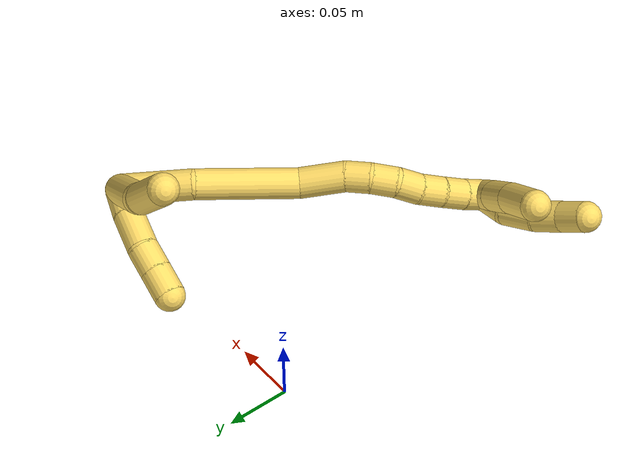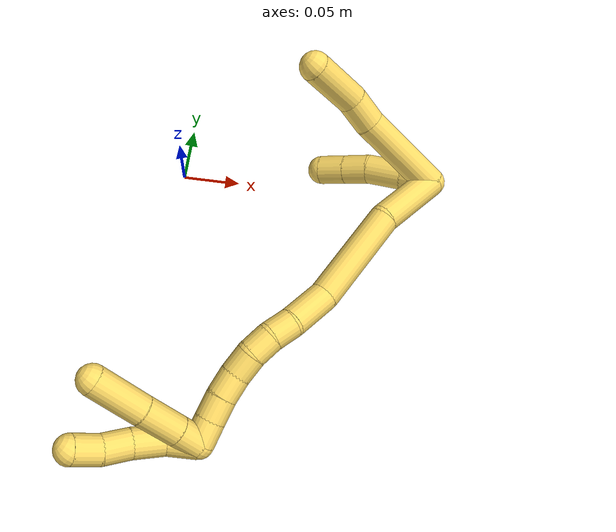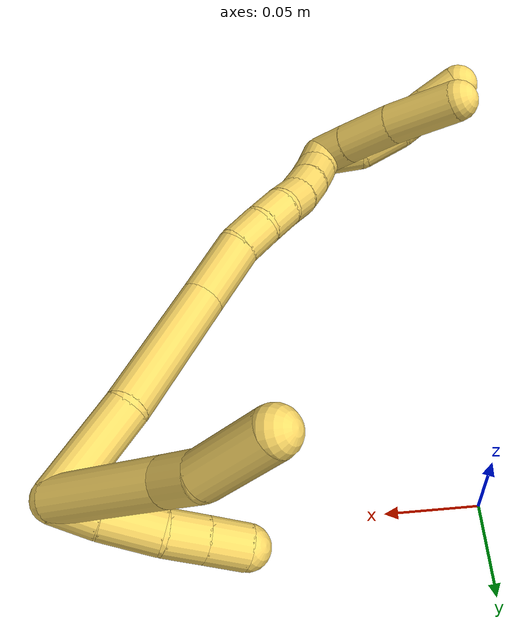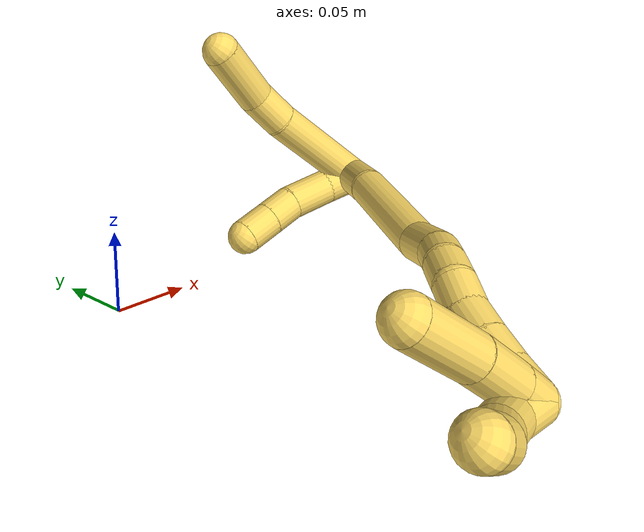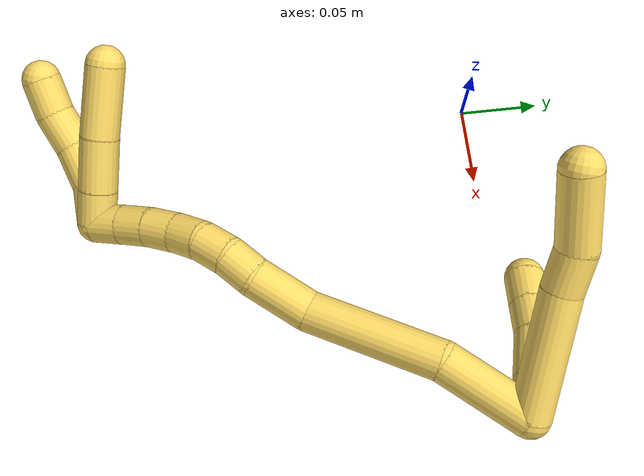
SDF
<sdf version="1.7">
 <world name="default">
  <model name="5">
   <static>0</static>
   <link name="5">
    <collision name="collision-cylinder-e_1_2_8">
     <pose>-0.000613 0.001011 -0.038886 -3.11559 -0.015749 1.08902</pose>
     <geometry><cylinder><radius>0.0125</radius><length>0.077808</length></cylinder></geometry>
     <surface>
      <friction><ode><mu>1.16</mu><mu2>1.16</mu2><slip1>0</slip1><slip2>0</slip2></ode></friction>
      <contact><ode><kp>1e+06</kp><kd>1</kd><max_vel>0</max_vel><min_depth>0.001</min_depth></ode></contact>
     </surface>
    </collision>
    <visual name="visual-cylinder-e_1_2_8">
     <pose>-0.000613 0.001011 -0.038886 -3.11559 -0.015749 1.08902</pose>
     <geometry><cylinder><radius>0.0125</radius><length>0.077808</length></cylinder></geometry>
     <material><ambient>1 0.858824 0.4 1</ambient></material>
    </visual>
    <collision name="collision-cylinder-e_2_8_9">
     <pose>-0.001825 0.004065 -0.090389 -2.98115 -0.046912 0.567868</pose>
     <geometry><cylinder><radius>0.0125</radius><length>0.02559</length></cylinder></geometry>
     <surface>
      <friction><ode><mu>1.16</mu><mu2>1.16</mu2><slip1>0</slip1><slip2>0</slip2></ode></friction>
      <contact><ode><kp>1e+06</kp><kd>1</kd><max_vel>0</max_vel><min_depth>0.001</min_depth></ode></contact>
     </surface>
    </collision>
    <visual name="visual-cylinder-e_2_8_9">
     <pose>-0.001825 0.004065 -0.090389 -2.98115 -0.046912 0.567868</pose>
     <geometry><cylinder><radius>0.0125</radius><length>0.02559</length></cylinder></geometry>
     <material><ambient>1 0.858824 0.4 1</ambient></material>
    </visual>
    <collision name="collision-cylinder-e_3_9_6">
     <pose>-0.009133 0.00614 -0.12532 -3.14011 -0.291999 3.13147</pose>
     <geometry><cylinder><radius>0.0125</radius><length>0.046602</length></cylinder></geometry>
     <surface>
      <friction><ode><mu>1.16</mu><mu2>1.16</mu2><slip1>0</slip1><slip2>0</slip2></ode></friction>
      <contact><ode><kp>1e+06</kp><kd>1</kd><max_vel>0</max_vel><min_depth>0.001</min_depth></ode></contact>
     </surface>
    </collision>
    <visual name="visual-cylinder-e_3_9_6">
     <pose>-0.009133 0.00614 -0.12532 -3.14011 -0.291999 3.13147</pose>
     <geometry><cylinder><radius>0.0125</radius><length>0.046602</length></cylinder></geometry>
     <material><ambient>1 0.858824 0.4 1</ambient></material>
    </visual>
    <collision name="collision-cylinder-e_1_2_10">
     <pose>0.007307 -0.006156 -0.007511 2.45505 0.645083 1.5037</pose>
     <geometry><cylinder><radius>0.0125</radius><length>0.024307</length></cylinder></geometry>
     <surface>
      <friction><ode><mu>1.16</mu><mu2>1.16</mu2><slip1>0</slip1><slip2>0</slip2></ode></friction>
      <contact><ode><kp>1e+06</kp><kd>1</kd><max_vel>0</max_vel><min_depth>0.001</min_depth></ode></contact>
     </surface>
    </collision>
    <visual name="visual-cylinder-e_1_2_10">
     <pose>0.007307 -0.006156 -0.007511 2.45505 0.645083 1.5037</pose>
     <geometry><cylinder><radius>0.0125</radius><length>0.024307</length></cylinder></geometry>
     <material><ambient>1 0.858824 0.4 1</ambient></material>
    </visual>
    <collision name="collision-cylinder-e_2_10_11">
     <pose>0.022949 -0.021107 -0.024994 2.41879 0.559893 1.30046</pose>
     <geometry><cylinder><radius>0.0125</radius><length>0.031386</length></cylinder></geometry>
     <surface>
      <friction><ode><mu>1.16</mu><mu2>1.16</mu2><slip1>0</slip1><slip2>0</slip2></ode></friction>
      <contact><ode><kp>1e+06</kp><kd>1</kd><max_vel>0</max_vel><min_depth>0.001</min_depth></ode></contact>
     </surface>
    </collision>
    <visual name="visual-cylinder-e_2_10_11">
     <pose>0.022949 -0.021107 -0.024994 2.41879 0.559893 1.30046</pose>
     <geometry><cylinder><radius>0.0125</radius><length>0.031386</length></cylinder></geometry>
     <material><ambient>1 0.858824 0.4 1</ambient></material>
    </visual>
    <collision name="collision-cylinder-e_3_11_12">
     <pose>0.03658 -0.037559 -0.040452 2.19249 0.51226 0.942896</pose>
     <geometry><cylinder><radius>0.0125</radius><length>0.021612</length></cylinder></geometry>
     <surface>
      <friction><ode><mu>1.16</mu><mu2>1.16</mu2><slip1>0</slip1><slip2>0</slip2></ode></friction>
      <contact><ode><kp>1e+06</kp><kd>1</kd><max_vel>0</max_vel><min_depth>0.001</min_depth></ode></contact>
     </surface>
    </collision>
    <visual name="visual-cylinder-e_3_11_12">
     <pose>0.03658 -0.037559 -0.040452 2.19249 0.51226 0.942896</pose>
     <geometry><cylinder><radius>0.0125</radius><length>0.021612</length></cylinder></geometry>
     <material><ambient>1 0.858824 0.4 1</ambient></material>
    </visual>
    <collision name="collision-cylinder-e_4_12_5">
     <pose>0.047478 -0.053222 -0.051707 2.19524 0.516247 0.952229</pose>
     <geometry><cylinder><radius>0.0125</radius><length>0.022695</length></cylinder></geometry>
     <surface>
      <friction><ode><mu>1.16</mu><mu2>1.16</mu2><slip1>0</slip1><slip2>0</slip2></ode></friction>
      <contact><ode><kp>1e+06</kp><kd>1</kd><max_vel>0</max_vel><min_depth>0.001</min_depth></ode></contact>
     </surface>
    </collision>
    <visual name="visual-cylinder-e_4_12_5">
     <pose>0.047478 -0.053222 -0.051707 2.19524 0.516247 0.952229</pose>
     <geometry><cylinder><radius>0.0125</radius><length>0.022695</length></cylinder></geometry>
     <material><ambient>1 0.858824 0.4 1</ambient></material>
    </visual>
    <collision name="collision-cylinder-e_1_2_13">
     <pose>-0.015724 -0.02212 -0.010486 2.01348 -0.570953 -0.868766</pose>
     <geometry><cylinder><radius>0.0125</radius><length>0.058189</length></cylinder></geometry>
     <surface>
      <friction><ode><mu>1.16</mu><mu2>1.16</mu2><slip1>0</slip1><slip2>0</slip2></ode></friction>
      <contact><ode><kp>1e+06</kp><kd>1</kd><max_vel>0</max_vel><min_depth>0.001</min_depth></ode></contact>
     </surface>
    </collision>
    <visual name="visual-cylinder-e_1_2_13">
     <pose>-0.015724 -0.02212 -0.010486 2.01348 -0.570953 -0.868766</pose>
     <geometry><cylinder><radius>0.0125</radius><length>0.058189</length></cylinder></geometry>
     <material><ambient>1 0.858824 0.4 1</ambient></material>
    </visual>
    <collision name="collision-cylinder-e_2_13_14">
     <pose>-0.052167 -0.080494 -0.024965 1.68048 -0.516611 -0.573547</pose>
     <geometry><cylinder><radius>0.0125</radius><length>0.083895</length></cylinder></geometry>
     <surface>
      <friction><ode><mu>1.16</mu><mu2>1.16</mu2><slip1>0</slip1><slip2>0</slip2></ode></friction>
      <contact><ode><kp>1e+06</kp><kd>1</kd><max_vel>0</max_vel><min_depth>0.001</min_depth></ode></contact>
     </surface>
    </collision>
    <visual name="visual-cylinder-e_2_13_14">
     <pose>-0.052167 -0.080494 -0.024965 1.68048 -0.516611 -0.573547</pose>
     <geometry><cylinder><radius>0.0125</radius><length>0.083895</length></cylinder></geometry>
     <material><ambient>1 0.858824 0.4 1</ambient></material>
    </visual>
    <collision name="collision-cylinder-e_3_14_15">
     <pose>-0.084118 -0.130149 -0.035951 2.05179 -0.639039 -0.999327</pose>
     <geometry><cylinder><radius>0.0125</radius><length>0.037666</length></cylinder></geometry>
     <surface>
      <friction><ode><mu>1.16</mu><mu2>1.16</mu2><slip1>0</slip1><slip2>0</slip2></ode></friction>
      <contact><ode><kp>1e+06</kp><kd>1</kd><max_vel>0</max_vel><min_depth>0.001</min_depth></ode></contact>
     </surface>
    </collision>
    <visual name="visual-cylinder-e_3_14_15">
     <pose>-0.084118 -0.130149 -0.035951 2.05179 -0.639039 -0.999327</pose>
     <geometry><cylinder><radius>0.0125</radius><length>0.037666</length></cylinder></geometry>
     <material><ambient>1 0.858824 0.4 1</ambient></material>
    </visual>
    <collision name="collision-cylinder-e_4_15_16">
     <pose>-0.099464 -0.151805 -0.046986 2.0261 -0.420873 -0.659789</pose>
     <geometry><cylinder><radius>0.0125</radius><length>0.020138</length></cylinder></geometry>
     <surface>
      <friction><ode><mu>1.16</mu><mu2>1.16</mu2><slip1>0</slip1><slip2>0</slip2></ode></friction>
      <contact><ode><kp>1e+06</kp><kd>1</kd><max_vel>0</max_vel><min_depth>0.001</min_depth></ode></contact>
     </surface>
    </collision>
    <visual name="visual-cylinder-e_4_15_16">
     <pose>-0.099464 -0.151805 -0.046986 2.0261 -0.420873 -0.659789</pose>
     <geometry><cylinder><radius>0.0125</radius><length>0.020138</length></cylinder></geometry>
     <material><ambient>1 0.858824 0.4 1</ambient></material>
    </visual>
    <collision name="collision-cylinder-e_5_16_17">
     <pose>-0.106979 -0.169299 -0.053055 1.7868 -0.345065 -0.426707</pose>
     <geometry><cylinder><radius>0.0125</radius><length>0.020106</length></cylinder></geometry>
     <surface>
      <friction><ode><mu>1.16</mu><mu2>1.16</mu2><slip1>0</slip1><slip2>0</slip2></ode></friction>
      <contact><ode><kp>1e+06</kp><kd>1</kd><max_vel>0</max_vel><min_depth>0.001</min_depth></ode></contact>
     </surface>
    </collision>
    <visual name="visual-cylinder-e_5_16_17">
     <pose>-0.106979 -0.169299 -0.053055 1.7868 -0.345065 -0.426707</pose>
     <geometry><cylinder><radius>0.0125</radius><length>0.020106</length></cylinder></geometry>
     <material><ambient>1 0.858824 0.4 1</ambient></material>
    </visual>
    <collision name="collision-cylinder-e_6_17_18">
     <pose>-0.112592 -0.188285 -0.054684 1.52991 -0.223073 -0.214204</pose>
     <geometry><cylinder><radius>0.0125</radius><length>0.020001</length></cylinder></geometry>
     <surface>
      <friction><ode><mu>1.16</mu><mu2>1.16</mu2><slip1>0</slip1><slip2>0</slip2></ode></friction>
      <contact><ode><kp>1e+06</kp><kd>1</kd><max_vel>0</max_vel><min_depth>0.001</min_depth></ode></contact>
     </surface>
    </collision>
    <visual name="visual-cylinder-e_6_17_18">
     <pose>-0.112592 -0.188285 -0.054684 1.52991 -0.223073 -0.214204</pose>
     <geometry><cylinder><radius>0.0125</radius><length>0.020001</length></cylinder></geometry>
     <material><ambient>1 0.858824 0.4 1</ambient></material>
    </visual>
    <collision name="collision-cylinder-e_7_18_19">
     <pose>-0.118391 -0.207329 -0.053448 1.48099 -0.36673 -0.335806</pose>
     <geometry><cylinder><radius>0.0125</radius><length>0.020005</length></cylinder></geometry>
     <surface>
      <friction><ode><mu>1.16</mu><mu2>1.16</mu2><slip1>0</slip1><slip2>0</slip2></ode></friction>
      <contact><ode><kp>1e+06</kp><kd>1</kd><max_vel>0</max_vel><min_depth>0.001</min_depth></ode></contact>
     </surface>
    </collision>
    <visual name="visual-cylinder-e_7_18_19">
     <pose>-0.118391 -0.207329 -0.053448 1.48099 -0.36673 -0.335806</pose>
     <geometry><cylinder><radius>0.0125</radius><length>0.020005</length></cylinder></geometry>
     <material><ambient>1 0.858824 0.4 1</ambient></material>
    </visual>
    <collision name="collision-cylinder-e_8_19_20">
     <pose>-0.125629 -0.22575 -0.050747 1.36919 -0.373796 -0.30631</pose>
     <geometry><cylinder><radius>0.0125</radius><length>0.02</length></cylinder></geometry>
     <surface>
      <friction><ode><mu>1.16</mu><mu2>1.16</mu2><slip1>0</slip1><slip2>0</slip2></ode></friction>
      <contact><ode><kp>1e+06</kp><kd>1</kd><max_vel>0</max_vel><min_depth>0.001</min_depth></ode></contact>
     </surface>
    </collision>
    <visual name="visual-cylinder-e_8_19_20">
     <pose>-0.125629 -0.22575 -0.050747 1.36919 -0.373796 -0.30631</pose>
     <geometry><cylinder><radius>0.0125</radius><length>0.02</length></cylinder></geometry>
     <material><ambient>1 0.858824 0.4 1</ambient></material>
    </visual>
    <collision name="collision-cylinder-e_9_20_1">
     <pose>-0.133507 -0.243749 -0.047064 1.36879 -0.436422 -0.35799</pose>
     <geometry><cylinder><radius>0.0125</radius><length>0.02</length></cylinder></geometry>
     <surface>
      <friction><ode><mu>1.16</mu><mu2>1.16</mu2><slip1>0</slip1><slip2>0</slip2></ode></friction>
      <contact><ode><kp>1e+06</kp><kd>1</kd><max_vel>0</max_vel><min_depth>0.001</min_depth></ode></contact>
     </surface>
    </collision>
    <visual name="visual-cylinder-e_9_20_1">
     <pose>-0.133507 -0.243749 -0.047064 1.36879 -0.436422 -0.35799</pose>
     <geometry><cylinder><radius>0.0125</radius><length>0.02</length></cylinder></geometry>
     <material><ambient>1 0.858824 0.4 1</ambient></material>
    </visual>
    <collision name="collision-cylinder-e_1_1_21">
     <pose>-0.136224 -0.259997 -0.055267 2.50753 0.120825 0.364615</pose>
     <geometry><cylinder><radius>0.0125</radius><length>0.025062</length></cylinder></geometry>
     <surface>
      <friction><ode><mu>1.16</mu><mu2>1.16</mu2><slip1>0</slip1><slip2>0</slip2></ode></friction>
      <contact><ode><kp>1e+06</kp><kd>1</kd><max_vel>0</max_vel><min_depth>0.001</min_depth></ode></contact>
     </surface>
    </collision>
    <visual name="visual-cylinder-e_1_1_21">
     <pose>-0.136224 -0.259997 -0.055267 2.50753 0.120825 0.364615</pose>
     <geometry><cylinder><radius>0.0125</radius><length>0.025062</length></cylinder></geometry>
     <material><ambient>1 0.858824 0.4 1</ambient></material>
    </visual>
    <collision name="collision-cylinder-e_2_21_22">
     <pose>-0.137672 -0.275447 -0.076084 2.49901 -0.215945 -0.629698</pose>
     <geometry><cylinder><radius>0.0125</radius><length>0.02761</length></cylinder></geometry>
     <surface>
      <friction><ode><mu>1.16</mu><mu2>1.16</mu2><slip1>0</slip1><slip2>0</slip2></ode></friction>
      <contact><ode><kp>1e+06</kp><kd>1</kd><max_vel>0</max_vel><min_depth>0.001</min_depth></ode></contact>
     </surface>
    </collision>
    <visual name="visual-cylinder-e_2_21_22">
     <pose>-0.137672 -0.275447 -0.076084 2.49901 -0.215945 -0.629698</pose>
     <geometry><cylinder><radius>0.0125</radius><length>0.02761</length></cylinder></geometry>
     <material><ambient>1 0.858824 0.4 1</ambient></material>
    </visual>
    <collision name="collision-cylinder-e_3_22_23">
     <pose>-0.145224 -0.290086 -0.095902 2.5131 -0.390667 -1.09368</pose>
     <geometry><cylinder><radius>0.0125</radius><length>0.024129</length></cylinder></geometry>
     <surface>
      <friction><ode><mu>1.16</mu><mu2>1.16</mu2><slip1>0</slip1><slip2>0</slip2></ode></friction>
      <contact><ode><kp>1e+06</kp><kd>1</kd><max_vel>0</max_vel><min_depth>0.001</min_depth></ode></contact>
     </surface>
    </collision>
    <visual name="visual-cylinder-e_3_22_23">
     <pose>-0.145224 -0.290086 -0.095902 2.5131 -0.390667 -1.09368</pose>
     <geometry><cylinder><radius>0.0125</radius><length>0.024129</length></cylinder></geometry>
     <material><ambient>1 0.858824 0.4 1</ambient></material>
    </visual>
    <collision name="collision-cylinder-e_4_23_4">
     <pose>-0.153476 -0.30091 -0.115075 2.74372 -0.3208 -1.35256</pose>
     <geometry><cylinder><radius>0.0125</radius><length>0.0232</length></cylinder></geometry>
     <surface>
      <friction><ode><mu>1.16</mu><mu2>1.16</mu2><slip1>0</slip1><slip2>0</slip2></ode></friction>
      <contact><ode><kp>1e+06</kp><kd>1</kd><max_vel>0</max_vel><min_depth>0.001</min_depth></ode></contact>
     </surface>
    </collision>
    <visual name="visual-cylinder-e_4_23_4">
     <pose>-0.153476 -0.30091 -0.115075 2.74372 -0.3208 -1.35256</pose>
     <geometry><cylinder><radius>0.0125</radius><length>0.0232</length></cylinder></geometry>
     <material><ambient>1 0.858824 0.4 1</ambient></material>
    </visual>
    <collision name="collision-cylinder-e_1_1_24">
     <pose>-0.138746 -0.25266 -0.056116 3.13862 -0.092759 -3.07766</pose>
     <geometry><cylinder><radius>0.0125</radius><length>0.021834</length></cylinder></geometry>
     <surface>
      <friction><ode><mu>1.16</mu><mu2>1.16</mu2><slip1>0</slip1><slip2>0</slip2></ode></friction>
      <contact><ode><kp>1e+06</kp><kd>1</kd><max_vel>0</max_vel><min_depth>0.001</min_depth></ode></contact>
     </surface>
    </collision>
    <visual name="visual-cylinder-e_1_1_24">
     <pose>-0.138746 -0.25266 -0.056116 3.13862 -0.092759 -3.07766</pose>
     <geometry><cylinder><radius>0.0125</radius><length>0.021834</length></cylinder></geometry>
     <material><ambient>1 0.858824 0.4 1</ambient></material>
    </visual>
    <collision name="collision-cylinder-e_2_24_25">
     <pose>-0.141042 -0.253103 -0.083727 3.11706 -0.076598 -2.52191</pose>
     <geometry><cylinder><radius>0.0125</radius><length>0.033591</length></cylinder></geometry>
     <surface>
      <friction><ode><mu>1.16</mu><mu2>1.16</mu2><slip1>0</slip1><slip2>0</slip2></ode></friction>
      <contact><ode><kp>1e+06</kp><kd>1</kd><max_vel>0</max_vel><min_depth>0.001</min_depth></ode></contact>
     </surface>
    </collision>
    <visual name="visual-cylinder-e_2_24_25">
     <pose>-0.141042 -0.253103 -0.083727 3.11706 -0.076598 -2.52191</pose>
     <geometry><cylinder><radius>0.0125</radius><length>0.033591</length></cylinder></geometry>
     <material><ambient>1 0.858824 0.4 1</ambient></material>
    </visual>
    <collision name="collision-cylinder-e_3_25_3">
     <pose>-0.142602 -0.254402 -0.122736 3.10174 -0.012324 -0.59979</pose>
     <geometry><cylinder><radius>0.0125</radius><length>0.044575</length></cylinder></geometry>
     <surface>
      <friction><ode><mu>1.16</mu><mu2>1.16</mu2><slip1>0</slip1><slip2>0</slip2></ode></friction>
      <contact><ode><kp>1e+06</kp><kd>1</kd><max_vel>0</max_vel><min_depth>0.001</min_depth></ode></contact>
     </surface>
    </collision>
    <visual name="visual-cylinder-e_3_25_3">
     <pose>-0.142602 -0.254402 -0.122736 3.10174 -0.012324 -0.59979</pose>
     <geometry><cylinder><radius>0.0125</radius><length>0.044575</length></cylinder></geometry>
     <material><ambient>1 0.858824 0.4 1</ambient></material>
    </visual>
    <collision name="collision-sphere-3">
     <pose>-0.142877 -0.25529 -0.145005 0 -0 0</pose>
     <geometry><sphere><radius>0.0125</radius></sphere></geometry>
     <surface>
      <friction><ode><mu>1.16</mu><mu2>1.16</mu2><slip1>0</slip1><slip2>0</slip2></ode></friction>
      <contact><ode><kp>1e+06</kp><kd>1</kd><max_vel>0</max_vel><min_depth>0.001</min_depth></ode></contact>
     </surface>
    </collision>
    <visual name="visual-sphere-3">
     <pose>-0.142877 -0.25529 -0.145005 0 -0 0</pose>
     <geometry><sphere><radius>0.0125</radius></sphere></geometry>
     <material><ambient>1 0.858824 0.4 1</ambient></material>
    </visual>
    <collision name="collision-sphere-25">
     <pose>-0.142327 -0.253514 -0.100468 0 -0 0</pose>
     <geometry><sphere><radius>0.0125</radius></sphere></geometry>
     <surface>
      <friction><ode><mu>1.16</mu><mu2>1.16</mu2><slip1>0</slip1><slip2>0</slip2></ode></friction>
      <contact><ode><kp>1e+06</kp><kd>1</kd><max_vel>0</max_vel><min_depth>0.001</min_depth></ode></contact>
     </surface>
    </collision>
    <visual name="visual-sphere-25">
     <pose>-0.142327 -0.253514 -0.100468 0 -0 0</pose>
     <geometry><sphere><radius>0.0125</radius></sphere></geometry>
     <material><ambient>1 0.858824 0.4 1</ambient></material>
    </visual>
    <collision name="collision-sphere-24">
     <pose>-0.139757 -0.252692 -0.066986 0 -0 0</pose>
     <geometry><sphere><radius>0.0125</radius></sphere></geometry>
     <surface>
      <friction><ode><mu>1.16</mu><mu2>1.16</mu2><slip1>0</slip1><slip2>0</slip2></ode></friction>
      <contact><ode><kp>1e+06</kp><kd>1</kd><max_vel>0</max_vel><min_depth>0.001</min_depth></ode></contact>
     </surface>
    </collision>
    <visual name="visual-sphere-24">
     <pose>-0.139757 -0.252692 -0.066986 0 -0 0</pose>
     <geometry><sphere><radius>0.0125</radius></sphere></geometry>
     <material><ambient>1 0.858824 0.4 1</ambient></material>
    </visual>
    <collision name="collision-sphere-4">
     <pose>-0.157134 -0.305175 -0.125223 0 -0 0</pose>
     <geometry><sphere><radius>0.0125</radius></sphere></geometry>
     <surface>
      <friction><ode><mu>1.16</mu><mu2>1.16</mu2><slip1>0</slip1><slip2>0</slip2></ode></friction>
      <contact><ode><kp>1e+06</kp><kd>1</kd><max_vel>0</max_vel><min_depth>0.001</min_depth></ode></contact>
     </surface>
    </collision>
    <visual name="visual-sphere-4">
     <pose>-0.157134 -0.305175 -0.125223 0 -0 0</pose>
     <geometry><sphere><radius>0.0125</radius></sphere></geometry>
     <material><ambient>1 0.858824 0.4 1</ambient></material>
    </visual>
    <collision name="collision-sphere-23">
     <pose>-0.149818 -0.296645 -0.104926 0 -0 0</pose>
     <geometry><sphere><radius>0.0125</radius></sphere></geometry>
     <surface>
      <friction><ode><mu>1.16</mu><mu2>1.16</mu2><slip1>0</slip1><slip2>0</slip2></ode></friction>
      <contact><ode><kp>1e+06</kp><kd>1</kd><max_vel>0</max_vel><min_depth>0.001</min_depth></ode></contact>
     </surface>
    </collision>
    <visual name="visual-sphere-23">
     <pose>-0.149818 -0.296645 -0.104926 0 -0 0</pose>
     <geometry><sphere><radius>0.0125</radius></sphere></geometry>
     <material><ambient>1 0.858824 0.4 1</ambient></material>
    </visual>
    <collision name="collision-sphere-22">
     <pose>-0.14063 -0.283528 -0.086879 0 -0 0</pose>
     <geometry><sphere><radius>0.0125</radius></sphere></geometry>
     <surface>
      <friction><ode><mu>1.16</mu><mu2>1.16</mu2><slip1>0</slip1><slip2>0</slip2></ode></friction>
      <contact><ode><kp>1e+06</kp><kd>1</kd><max_vel>0</max_vel><min_depth>0.001</min_depth></ode></contact>
     </surface>
    </collision>
    <visual name="visual-sphere-22">
     <pose>-0.14063 -0.283528 -0.086879 0 -0 0</pose>
     <geometry><sphere><radius>0.0125</radius></sphere></geometry>
     <material><ambient>1 0.858824 0.4 1</ambient></material>
    </visual>
    <collision name="collision-sphere-21">
     <pose>-0.134714 -0.267367 -0.065289 0 -0 0</pose>
     <geometry><sphere><radius>0.0125</radius></sphere></geometry>
     <surface>
      <friction><ode><mu>1.16</mu><mu2>1.16</mu2><slip1>0</slip1><slip2>0</slip2></ode></friction>
      <contact><ode><kp>1e+06</kp><kd>1</kd><max_vel>0</max_vel><min_depth>0.001</min_depth></ode></contact>
     </surface>
    </collision>
    <visual name="visual-sphere-21">
     <pose>-0.134714 -0.267367 -0.065289 0 -0 0</pose>
     <geometry><sphere><radius>0.0125</radius></sphere></geometry>
     <material><ambient>1 0.858824 0.4 1</ambient></material>
    </visual>
    <collision name="collision-sphere-1">
     <pose>-0.137734 -0.252628 -0.045246 0 -0 0</pose>
     <geometry><sphere><radius>0.0125</radius></sphere></geometry>
     <surface>
      <friction><ode><mu>1.16</mu><mu2>1.16</mu2><slip1>0</slip1><slip2>0</slip2></ode></friction>
      <contact><ode><kp>1e+06</kp><kd>1</kd><max_vel>0</max_vel><min_depth>0.001</min_depth></ode></contact>
     </surface>
    </collision>
    <visual name="visual-sphere-1">
     <pose>-0.137734 -0.252628 -0.045246 0 -0 0</pose>
     <geometry><sphere><radius>0.0125</radius></sphere></geometry>
     <material><ambient>1 0.858824 0.4 1</ambient></material>
    </visual>
    <collision name="collision-sphere-11">
     <pose>0.031284 -0.029902 -0.034966 0 -0 0</pose>
     <geometry><sphere><radius>0.0125</radius></sphere></geometry>
     <surface>
      <friction><ode><mu>1.16</mu><mu2>1.16</mu2><slip1>0</slip1><slip2>0</slip2></ode></friction>
      <contact><ode><kp>1e+06</kp><kd>1</kd><max_vel>0</max_vel><min_depth>0.001</min_depth></ode></contact>
     </surface>
    </collision>
    <visual name="visual-sphere-11">
     <pose>0.031284 -0.029902 -0.034966 0 -0 0</pose>
     <geometry><sphere><radius>0.0125</radius></sphere></geometry>
     <material><ambient>1 0.858824 0.4 1</ambient></material>
    </visual>
    <collision name="collision-sphere-10">
     <pose>0.014615 -0.012311 -0.015022 0 -0 0</pose>
     <geometry><sphere><radius>0.0125</radius></sphere></geometry>
     <surface>
      <friction><ode><mu>1.16</mu><mu2>1.16</mu2><slip1>0</slip1><slip2>0</slip2></ode></friction>
      <contact><ode><kp>1e+06</kp><kd>1</kd><max_vel>0</max_vel><min_depth>0.001</min_depth></ode></contact>
     </surface>
    </collision>
    <visual name="visual-sphere-10">
     <pose>0.014615 -0.012311 -0.015022 0 -0 0</pose>
     <geometry><sphere><radius>0.0125</radius></sphere></geometry>
     <material><ambient>1 0.858824 0.4 1</ambient></material>
    </visual>
    <collision name="collision-sphere-6">
     <pose>-0.015841 0.006173 -0.147635 0 -0 0</pose>
     <geometry><sphere><radius>0.0125</radius></sphere></geometry>
     <surface>
      <friction><ode><mu>1.16</mu><mu2>1.16</mu2><slip1>0</slip1><slip2>0</slip2></ode></friction>
      <contact><ode><kp>1e+06</kp><kd>1</kd><max_vel>0</max_vel><min_depth>0.001</min_depth></ode></contact>
     </surface>
    </collision>
    <visual name="visual-sphere-6">
     <pose>-0.015841 0.006173 -0.147635 0 -0 0</pose>
     <geometry><sphere><radius>0.0125</radius></sphere></geometry>
     <material><ambient>1 0.858824 0.4 1</ambient></material>
    </visual>
    <collision name="collision-sphere-9">
     <pose>-0.002425 0.006107 -0.103006 0 -0 0</pose>
     <geometry><sphere><radius>0.0125</radius></sphere></geometry>
     <surface>
      <friction><ode><mu>1.16</mu><mu2>1.16</mu2><slip1>0</slip1><slip2>0</slip2></ode></friction>
      <contact><ode><kp>1e+06</kp><kd>1</kd><max_vel>0</max_vel><min_depth>0.001</min_depth></ode></contact>
     </surface>
    </collision>
    <visual name="visual-sphere-9">
     <pose>-0.002425 0.006107 -0.103006 0 -0 0</pose>
     <geometry><sphere><radius>0.0125</radius></sphere></geometry>
     <material><ambient>1 0.858824 0.4 1</ambient></material>
    </visual>
    <collision name="collision-sphere-2">
     <geometry><sphere><radius>0.0125</radius></sphere></geometry>
     <surface>
      <friction><ode><mu>1.16</mu><mu2>1.16</mu2><slip1>0</slip1><slip2>0</slip2></ode></friction>
      <contact><ode><kp>1e+06</kp><kd>1</kd><max_vel>0</max_vel><min_depth>0.001</min_depth></ode></contact>
     </surface>
    </collision>
    <visual name="visual-sphere-2">
     <geometry><sphere><radius>0.0125</radius></sphere></geometry>
     <material><ambient>1 0.858824 0.4 1</ambient></material>
    </visual>
    <collision name="collision-sphere-19">
     <pose>-0.121977 -0.216629 -0.052611 0 -0 0</pose>
     <geometry><sphere><radius>0.0125</radius></sphere></geometry>
     <surface>
      <friction><ode><mu>1.16</mu><mu2>1.16</mu2><slip1>0</slip1><slip2>0</slip2></ode></friction>
      <contact><ode><kp>1e+06</kp><kd>1</kd><max_vel>0</max_vel><min_depth>0.001</min_depth></ode></contact>
     </surface>
    </collision>
    <visual name="visual-sphere-19">
     <pose>-0.121977 -0.216629 -0.052611 0 -0 0</pose>
     <geometry><sphere><radius>0.0125</radius></sphere></geometry>
     <material><ambient>1 0.858824 0.4 1</ambient></material>
    </visual>
    <collision name="collision-sphere-8">
     <pose>-0.001225 0.002023 -0.077772 0 -0 0</pose>
     <geometry><sphere><radius>0.0125</radius></sphere></geometry>
     <surface>
      <friction><ode><mu>1.16</mu><mu2>1.16</mu2><slip1>0</slip1><slip2>0</slip2></ode></friction>
      <contact><ode><kp>1e+06</kp><kd>1</kd><max_vel>0</max_vel><min_depth>0.001</min_depth></ode></contact>
     </surface>
    </collision>
    <visual name="visual-sphere-8">
     <pose>-0.001225 0.002023 -0.077772 0 -0 0</pose>
     <geometry><sphere><radius>0.0125</radius></sphere></geometry>
     <material><ambient>1 0.858824 0.4 1</ambient></material>
    </visual>
    <collision name="collision-sphere-12">
     <pose>0.041877 -0.045216 -0.045937 0 -0 0</pose>
     <geometry><sphere><radius>0.0125</radius></sphere></geometry>
     <surface>
      <friction><ode><mu>1.16</mu><mu2>1.16</mu2><slip1>0</slip1><slip2>0</slip2></ode></friction>
      <contact><ode><kp>1e+06</kp><kd>1</kd><max_vel>0</max_vel><min_depth>0.001</min_depth></ode></contact>
     </surface>
    </collision>
    <visual name="visual-sphere-12">
     <pose>0.041877 -0.045216 -0.045937 0 -0 0</pose>
     <geometry><sphere><radius>0.0125</radius></sphere></geometry>
     <material><ambient>1 0.858824 0.4 1</ambient></material>
    </visual>
    <collision name="collision-sphere-5">
     <pose>0.05308 -0.061229 -0.057477 0 -0 0</pose>
     <geometry><sphere><radius>0.0125</radius></sphere></geometry>
     <surface>
      <friction><ode><mu>1.16</mu><mu2>1.16</mu2><slip1>0</slip1><slip2>0</slip2></ode></friction>
      <contact><ode><kp>1e+06</kp><kd>1</kd><max_vel>0</max_vel><min_depth>0.001</min_depth></ode></contact>
     </surface>
    </collision>
    <visual name="visual-sphere-5">
     <pose>0.05308 -0.061229 -0.057477 0 -0 0</pose>
     <geometry><sphere><radius>0.0125</radius></sphere></geometry>
     <material><ambient>1 0.858824 0.4 1</ambient></material>
    </visual>
    <collision name="collision-sphere-13">
     <pose>-0.031447 -0.04424 -0.020972 0 -0 0</pose>
     <geometry><sphere><radius>0.0125</radius></sphere></geometry>
     <surface>
      <friction><ode><mu>1.16</mu><mu2>1.16</mu2><slip1>0</slip1><slip2>0</slip2></ode></friction>
      <contact><ode><kp>1e+06</kp><kd>1</kd><max_vel>0</max_vel><min_depth>0.001</min_depth></ode></contact>
     </surface>
    </collision>
    <visual name="visual-sphere-13">
     <pose>-0.031447 -0.04424 -0.020972 0 -0 0</pose>
     <geometry><sphere><radius>0.0125</radius></sphere></geometry>
     <material><ambient>1 0.858824 0.4 1</ambient></material>
    </visual>
    <collision name="collision-sphere-14">
     <pose>-0.072886 -0.116748 -0.028958 0 -0 0</pose>
     <geometry><sphere><radius>0.0125</radius></sphere></geometry>
     <surface>
      <friction><ode><mu>1.16</mu><mu2>1.16</mu2><slip1>0</slip1><slip2>0</slip2></ode></friction>
      <contact><ode><kp>1e+06</kp><kd>1</kd><max_vel>0</max_vel><min_depth>0.001</min_depth></ode></contact>
     </surface>
    </collision>
    <visual name="visual-sphere-14">
     <pose>-0.072886 -0.116748 -0.028958 0 -0 0</pose>
     <geometry><sphere><radius>0.0125</radius></sphere></geometry>
     <material><ambient>1 0.858824 0.4 1</ambient></material>
    </visual>
    <collision name="collision-sphere-15">
     <pose>-0.095351 -0.143551 -0.042945 0 -0 0</pose>
     <geometry><sphere><radius>0.0125</radius></sphere></geometry>
     <surface>
      <friction><ode><mu>1.16</mu><mu2>1.16</mu2><slip1>0</slip1><slip2>0</slip2></ode></friction>
      <contact><ode><kp>1e+06</kp><kd>1</kd><max_vel>0</max_vel><min_depth>0.001</min_depth></ode></contact>
     </surface>
    </collision>
    <visual name="visual-sphere-15">
     <pose>-0.095351 -0.143551 -0.042945 0 -0 0</pose>
     <geometry><sphere><radius>0.0125</radius></sphere></geometry>
     <material><ambient>1 0.858824 0.4 1</ambient></material>
    </visual>
    <collision name="collision-sphere-16">
     <pose>-0.103578 -0.160059 -0.051028 0 -0 0</pose>
     <geometry><sphere><radius>0.0125</radius></sphere></geometry>
     <surface>
      <friction><ode><mu>1.16</mu><mu2>1.16</mu2><slip1>0</slip1><slip2>0</slip2></ode></friction>
      <contact><ode><kp>1e+06</kp><kd>1</kd><max_vel>0</max_vel><min_depth>0.001</min_depth></ode></contact>
     </surface>
    </collision>
    <visual name="visual-sphere-16">
     <pose>-0.103578 -0.160059 -0.051028 0 -0 0</pose>
     <geometry><sphere><radius>0.0125</radius></sphere></geometry>
     <material><ambient>1 0.858824 0.4 1</ambient></material>
    </visual>
    <collision name="collision-sphere-17">
     <pose>-0.110379 -0.17854 -0.055083 0 -0 0</pose>
     <geometry><sphere><radius>0.0125</radius></sphere></geometry>
     <surface>
      <friction><ode><mu>1.16</mu><mu2>1.16</mu2><slip1>0</slip1><slip2>0</slip2></ode></friction>
      <contact><ode><kp>1e+06</kp><kd>1</kd><max_vel>0</max_vel><min_depth>0.001</min_depth></ode></contact>
     </surface>
    </collision>
    <visual name="visual-sphere-17">
     <pose>-0.110379 -0.17854 -0.055083 0 -0 0</pose>
     <geometry><sphere><radius>0.0125</radius></sphere></geometry>
     <material><ambient>1 0.858824 0.4 1</ambient></material>
    </visual>
    <collision name="collision-sphere-18">
     <pose>-0.114804 -0.198029 -0.054286 0 -0 0</pose>
     <geometry><sphere><radius>0.0125</radius></sphere></geometry>
     <surface>
      <friction><ode><mu>1.16</mu><mu2>1.16</mu2><slip1>0</slip1><slip2>0</slip2></ode></friction>
      <contact><ode><kp>1e+06</kp><kd>1</kd><max_vel>0</max_vel><min_depth>0.001</min_depth></ode></contact>
     </surface>
    </collision>
    <visual name="visual-sphere-18">
     <pose>-0.114804 -0.198029 -0.054286 0 -0 0</pose>
     <geometry><sphere><radius>0.0125</radius></sphere></geometry>
     <material><ambient>1 0.858824 0.4 1</ambient></material>
    </visual>
    <collision name="collision-sphere-20">
     <pose>-0.12928 -0.234871 -0.048883 0 -0 0</pose>
     <geometry><sphere><radius>0.0125</radius></sphere></geometry>
     <surface>
      <friction><ode><mu>1.16</mu><mu2>1.16</mu2><slip1>0</slip1><slip2>0</slip2></ode></friction>
      <contact><ode><kp>1e+06</kp><kd>1</kd><max_vel>0</max_vel><min_depth>0.001</min_depth></ode></contact>
     </surface>
    </collision>
    <visual name="visual-sphere-20">
     <pose>-0.12928 -0.234871 -0.048883 0 -0 0</pose>
     <geometry><sphere><radius>0.0125</radius></sphere></geometry>
     <material><ambient>1 0.858824 0.4 1</ambient></material>
    </visual>
    <inertial>
     <pose>-0.064766 -0.123373 -0.056484 0 -0 0</pose>
     <mass>0.75</mass>
     <inertia><ixx>6.1e-05</ixx><ixy>0</ixy><ixz>0</ixz><iyy>-4.1e-05</iyy><iyz>0</iyz><izz>9.1e-05</izz></inertia>
    </inertial>
   </link>
   <pose>0.215782 -0.002772 0.04296 2.39494 0.630461 1.83164</pose>
  </model>
 </world>
</sdf>
